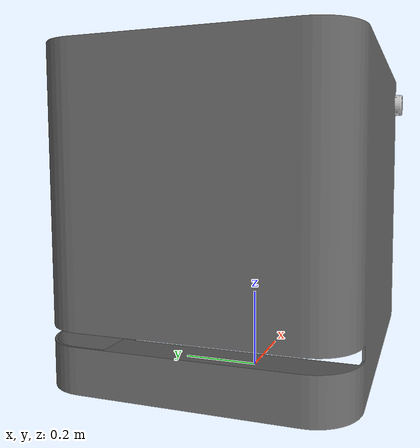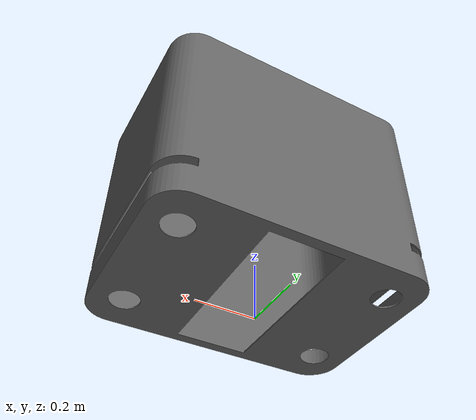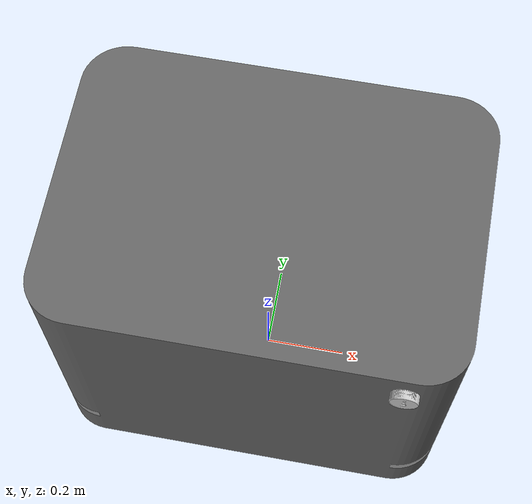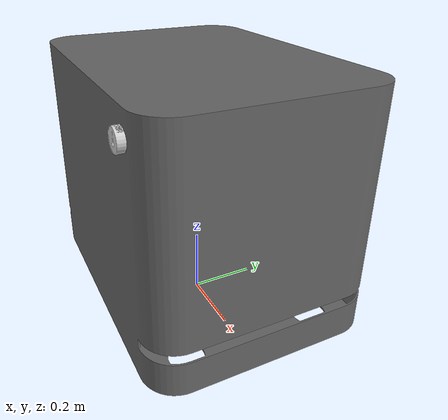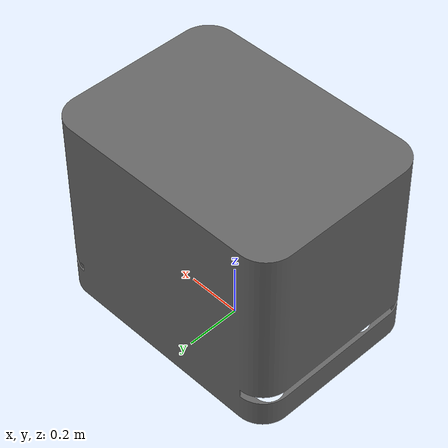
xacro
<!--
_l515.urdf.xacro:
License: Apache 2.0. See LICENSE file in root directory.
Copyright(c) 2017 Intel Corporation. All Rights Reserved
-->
<?xml version="1.0"?>
<robot name="moving_base" xmlns:xacro="http://ros.org/wiki/xacro">

    <xacro:include filename="$(find ur_e_description)/urdf/properties.xacro" />
    <xacro:include filename="$(find ur_e_description)/urdf/moving_base_odom.gazebo.xacro" />

    <xacro:property name="M_PI" value="3.1415926535897931" />

    <!-- add intel realsense l515 camera -->
    <xacro:arg name="use_nominal_extrinsics" default="true" />
    <xacro:arg name="add_plug" default="false" />
    <xacro:arg name="use_mesh" default="true" />
    <xacro:include filename="$(find ur_e_description)/urdf/realsense/_l515.urdf.xacro" />

    <xacro:sensor_l515 name="cam_2" parent="zau/base_link" use_nominal_extrinsics="$(arg use_nominal_extrinsics)"
        add_plug="$(arg add_plug)" use_mesh="$(arg use_mesh)">
        <origin xyz="0.340 -0.35 0.70" rpy="0 0 -1.57" />
    </xacro:sensor_l515>
    <!-- add intel realsense l515 camera -->

    <!-- add intel realsense camera d415 sensor -->

    <!-- add intel realsense d415 sensor -->

    <link name="zau/base_footprint" />

    <joint name="base_joint" type="fixed">
        <parent link="zau/base_footprint" />
        <child link="zau/base_link" />
        <origin xyz="0 0 0.010" rpy="0 0 0" />
    </joint>

    <link name="zau/base_link">
        <visual>
            <origin xyz="-0.46 0.335 0.06" rpy="1.57 0 0" />
            <geometry>
                <mesh filename="package://ur_e_description/meshes/moving_base/AGV.STL"
                    scale="0.01 0.01 0.01" />
            </geometry>
            <material name="light_black" />
        </visual>

        <collision>
            <origin xyz="0 0 0.47" rpy="0 0 0" />
            <geometry>
                <box size="0.920 0.670 0.630" />
            </geometry>
        </collision>
    </link>

    <!-- Inertial link stores the robot's inertial information -->

    <!-- #################### wheels #################### -->

    <!-- back caster -->

    <!-- back caster -->

    <!-- front caster -->

    <!-- front caster -->

    <!-- ROMEVED FOR NOW - JORGE FEB 2023 need check real position in the robot -->
    <!-- lidar sensor front -->
    <!-- lidar sensor front -->

    <!-- lidar sensor back -->
    <!-- lidar sensor back -->
    <!-- ROMEVED FOR NOW - JORGE FEB 2023 -->
</robot>

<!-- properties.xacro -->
<robot name="properties" xmlns:xacro="http://ros.org/wiki/xacro">

    <material name="grey">
        <color rgba="0.7 0.7 0.7 1.0" />
    </material>

    <material name="dark">
        <color rgba="0.3 0.3 0.3 1.0" />
    </material>

    <material name="light_black">
        <color rgba="0.4 0.4 0.4 1.0" />
    </material>

</robot>

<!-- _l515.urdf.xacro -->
<robot name="sensor_l515" xmlns:xacro="http://ros.org/wiki/xacro">
  <!-- Includes -->

  <!-- this
  specific plug does not apply to L515 -->

  <xacro:macro name="sensor_l515"
    params="parent *origin name:=camera_l515 topics_ns:=camera_l515 use_nominal_extrinsics:=false publish_pointcloud:=false add_plug:=false use_mesh:=true">
    <xacro:property name="M_PI" value="3.1415926535897931" />

    <!-- The following values are approximate, and the camera node
     publishing TF values with actual calibrated camera extrinsic values -->
    <xacro:property name="l515_cam_depth_to_infra_offset" value="0.0" />

    <!-- The following values model the aluminum peripherial case for the
     L515 camera, with the camera joint represented by the actual
     peripherial camera tripod mount -->
    <xacro:property name="l515_cam_width" value="0.061" />
    <xacro:property name="l515_cam_height" value="0.06065" />
    <xacro:property name="l515_cam_depth" value="0.026" />
    <xacro:property name="l515_cam_mount_from_glass_offset" value="0.012" />
    <!-- Zero depth to glass: see datasheet Revision 002, Fig. 2-2 page 11 -->
    <xacro:property name="l515_zero_depth_to_glass" value="0.0045" />
    <!-- convenience precomputation to avoid clutter-->
    <xacro:property name="l515_depth_x_offset_from_mount"
      value="${l515_cam_mount_from_glass_offset-l515_zero_depth_to_glass}" />

    <!-- The following offset is relative the the physical L515 camera peripherial
     camera tripod mount -->
    <xacro:property name="l515_cam_depth_px" value="${l515_depth_x_offset_from_mount}" />
    <xacro:property name="l515_cam_depth_py" value="0.0" />
    <xacro:property name="l515_cam_center" value="0.03015" />
    <xacro:property name="l515_cam_center_to_transmitter_pz" value="0.001" />
    <xacro:property name="l515_cam_transmitter_to_depth_pz" value="-0.010" />
    <xacro:property name="l515_cam_transmitter_to_color_pz" value="0.014" />
    <xacro:property name="l515_cam_depth_pz"
      value="${l515_cam_center+l515_cam_center_to_transmitter_pz+l515_cam_transmitter_to_depth_pz}" />
    <xacro:property name="l515_cam_center_to_depth_pz"
      value="${l515_cam_center_to_transmitter_pz+l515_cam_transmitter_to_depth_pz}" />
    <xacro:property name="abs_mount_from_center" value="0.020" />

    <!-- IMU position (p) and rotation (r) offsets from the camera color frame -->
    <!-- These values are approximate and depend on the actual calibrated camera extrinsic values -->
    <xacro:property name="l515_cam_color_to_imu_px" value="-0.00410137791186571" />
    <xacro:property name="l515_cam_color_to_imu_py" value="-0.0129784867167473" />
    <xacro:property name="l515_cam_color_to_imu_pz" value="0.00256138201802969" />
    <xacro:property name="l515_cam_color_to_imu_rx" value="-0.006161012" />
    <xacro:property name="l515_cam_color_to_imu_ry" value="0.020193459" />
    <xacro:property name="l515_cam_color_to_imu_rz" value="0.016301375" />

    <!-- camera body, with origin at bottom screw mount -->
    <joint name="${name}_joint" type="fixed">
      <xacro:insert_block name="origin" />
      <parent link="${parent}" />
      <child link="${name}_link" />
    </joint>

    <link name="${name}_link">
      <visual>
        <!-- the mesh origin is in the middle of the front plate -->
        <xacro:if value="${use_mesh}">
          <origin xyz="${l515_zero_depth_to_glass} 0 ${-l515_cam_center_to_depth_pz}"
            rpy="${M_PI/2} 0 ${M_PI/2}" />
          <geometry>
            <mesh filename="package://realsense2_description/meshes/l515.dae" />
          </geometry>
        </xacro:if>
        <xacro:unless value="${use_mesh}">
          <origin
            xyz="${-l515_cam_depth_px+l515_cam_mount_from_glass_offset-l515_cam_depth/2} 0 ${-l515_cam_center_to_depth_pz}"
            rpy="${M_PI/2} 0 ${M_PI/2}" />
          <geometry>
            <cylinder radius="${l515_cam_width/2.0}" length="${l515_cam_depth}" />
          </geometry>
        </xacro:unless>
      </visual>
      <collision>
        <origin
          xyz="${-l515_cam_depth_px+l515_cam_mount_from_glass_offset-l515_cam_depth/2} 0 ${-l515_cam_center_to_depth_pz}"
          rpy="${M_PI/2} 0 ${M_PI/2}" />
        <geometry>
          <cylinder radius="${l515_cam_width/2.0}" length="${l515_cam_depth}" />
        </geometry>
      </collision>
      <inertial>
        <!-- The following are not reliable values, and should not be used for modeling -->
        <!-- calculated assuming full cylinder as described here:
        https://en.wikipedia.org/wiki/List_of_moments_of_inertia -->
        <mass value="0.095" />
        <origin xyz="0 0 0" />
        <inertia ixx="0.000044" ixy="0.0" ixz="0.0" iyy="0.000027" iyz="0.0" izz="0.000027" />
      </inertial>
    </link>

    <!-- Use the nominal extrinsics between camera frames if the calibrated extrinsics aren't being
    published. e.g. running the device in simulation  -->
    <xacro:if value="${use_nominal_extrinsics}">
      <!-- camera depth joints and links -->
      <joint name="${name}_depth_joint" type="fixed">
        <origin xyz="0 0 0" rpy="0 0 0" />
        <parent link="${name}_link" />
        <child link="${name}_depth_frame" />
      </joint>
      <link name="${name}_depth_frame" />

      <joint name="${name}_depth_optical_joint" type="fixed">
        <origin xyz="0 0 0" rpy="${-M_PI/2} 0 ${-M_PI/2}" />
        <parent link="${name}_depth_frame" />
        <child link="${name}_depth_optical_frame" />
      </joint>
      <link name="${name}_depth_optical_frame" />

      <!-- camera left IR joints and links -->

      <!-- camera color joints and links -->
      <joint name="${name}_color_joint" type="fixed">
        <origin xyz="0 0 ${-l515_cam_transmitter_to_depth_pz+l515_cam_transmitter_to_color_pz}"
          rpy="0 0 0" />
        <parent link="${name}_link" />
        <child link="${name}_color_frame" />
      </joint>
      <link name="${name}_color_frame" />

      <joint name="${name}_color_optical_joint" type="fixed">
        <origin xyz="0 0 0" rpy="${-M_PI/2} 0 ${-M_PI/2}" />
        <parent link="${name}_color_frame" />
        <child link="${name}_color_optical_frame" />
      </joint>
      <link name="${name}_color_optical_frame" />

      <!-- camera IMU joints and links -->

    </xacro:if>
    <xacro:if value="${add_plug}">
      <xacro:usb_plug parent="${name}_bottom_screw_frame" name="${name}_usb_plug">
        <origin xyz="${l515_cam_mount_from_glass_offset-0.0148} -0.018 0.018" rpy="${M_PI/4} 0 0 " />
      </xacro:usb_plug>
    </xacro:if>

    <!-- Realsense Gazebo Plugin -->

  </xacro:macro>
</robot>
